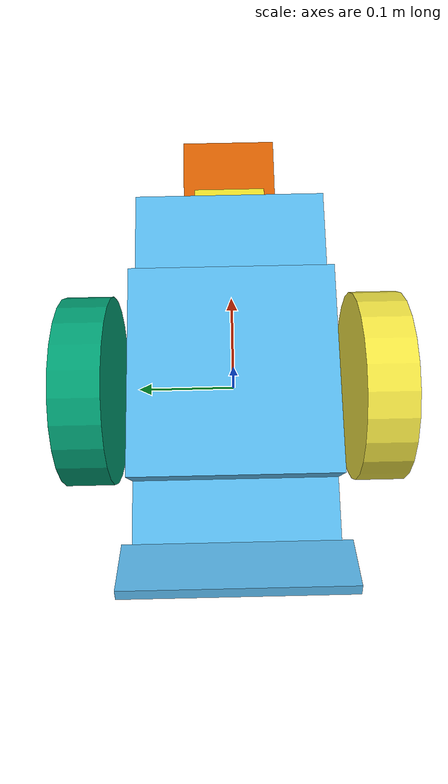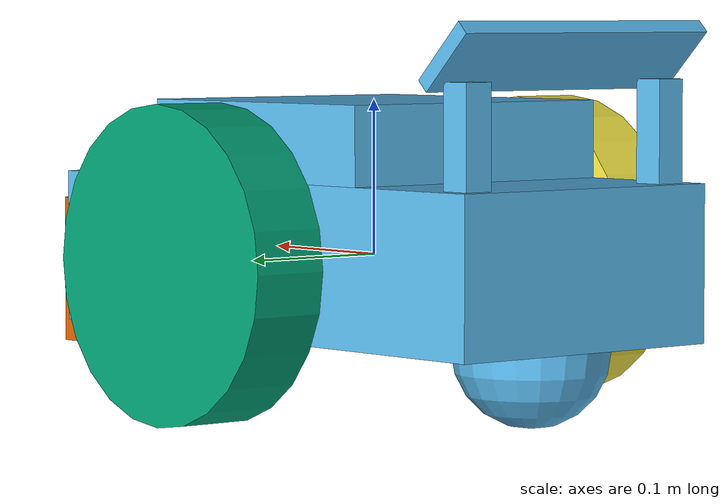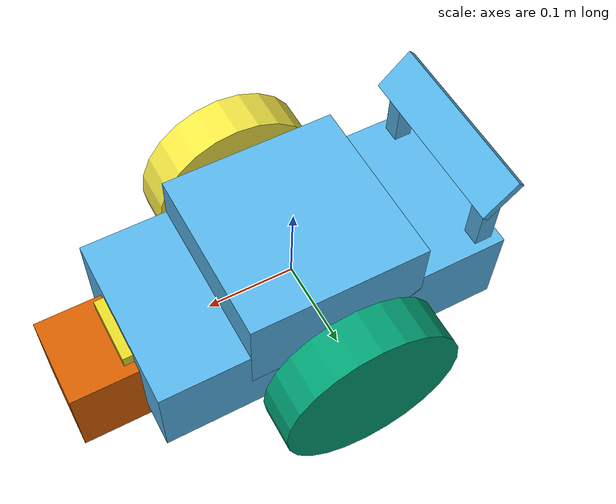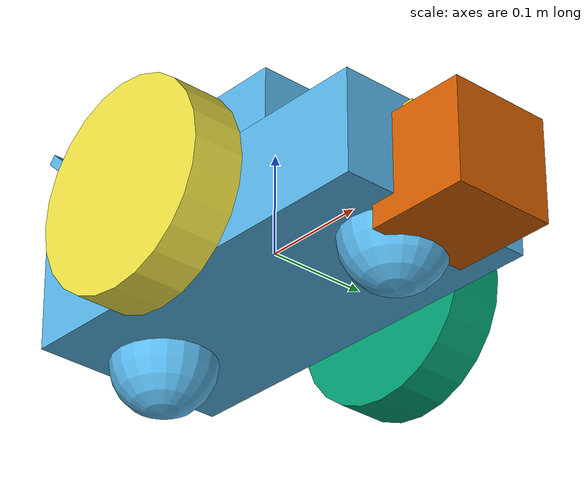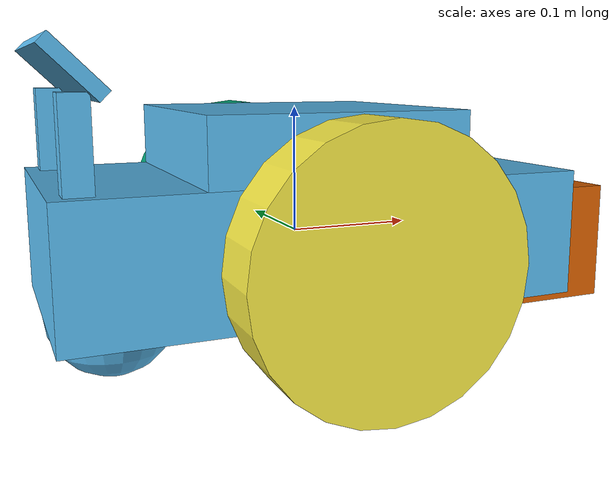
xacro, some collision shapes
<?xml version='1.0'?>

<robot name="udacity_bot" xmlns:xacro="http://www.ros.org/wiki/xacro">

  <xacro:include filename="$(find ozdemre_bot)/urdf/udacity_bot.gazebo" />

  <link name="robot_footprint"></link>

  <joint name="robot_footprint_joint" type="fixed">
    <origin xyz="0 0 0" rpy="0 0 0" />
    <parent link="robot_footprint"/>
    <child link="chassis" />
  </joint>

  <link name='chassis'>
    <pose>0 0 0.1 0 0 0</pose>

    <inertial>
      <mass value="15.0"/>
      <origin xyz="0.0 0 0" rpy=" 0 0 0"/>
      <inertia
          ixx="0.1" ixy="0" ixz="0"
          iyy="0.1" iyz="0"
          izz="0.1"
      />
    </inertial>

    <collision name='collision'>
      <origin xyz="0 0 0" rpy=" 0 0 0"/>
      <geometry>
        <box size=".4 .2 .1"/>
      </geometry>
    </collision>

    <visual name='chassis_visual'>
      <origin xyz="0 0 0" rpy=" 0 0 0"/>
      <geometry>
        <box size=".4 .2 .1"/>
      </geometry>
    </visual>

    <collision name='back_caster_collision'>
      <origin xyz="-0.15 0 -0.05" rpy=" 0 0 0"/>
      <geometry>
        <sphere radius="0.0499"/>
      </geometry>
      <surface>
        <friction>
          <ode>
            <mu>0</mu>
            <mu2>0</mu2>
            <slip1>1.0</slip1>
            <slip2>1.0</slip2>
          </ode>
        </friction>
      </surface>
    </collision>

    <visual name='back_caster_visual'>
      <origin xyz="-0.15 0 -0.05" rpy=" 0 0 0"/>
      <geometry>
        <sphere radius="0.05"/>
      </geometry>
    </visual>

    <collision name='front_caster_collision'>
      <origin xyz="0.15 0 -0.05" rpy=" 0 0 0"/>
      <geometry>
        <sphere radius="0.0499"/>
      </geometry>
      <surface>
        <friction>
          <ode>
            <mu>0</mu>
            <mu2>0</mu2>
            <slip1>1.0</slip1>
            <slip2>1.0</slip2>
          </ode>
        </friction>
      </surface>
    </collision>

    <visual name='front_caster_visual'>
      <origin xyz="0.15 0 -0.05" rpy=" 0 0 0"/>
      <geometry>
        <sphere radius="0.05"/>
      </geometry>
    </visual>

    <collision name='lidar_bracket_collision'>
      <origin xyz="0.225 0 -0.0225" rpy=" 0 0 0"/>
      <geometry>
        <box size="0.05 0.05 -0.01"/>
      </geometry>
    </collision>

    <visual name='lidar_bracket_visual'>
      <origin xyz="0.225 0 -0.0225" rpy=" 0 0 0"/>
      <geometry>
        <box size="0.05 0.05 0.01"/>
      </geometry>
    </visual>

    <collision name='passenger_collision'>
      <origin xyz="0 0 0.05" rpy=" 0 0 0"/>
      <geometry>
        <box size=".2 .2 .1"/>
      </geometry>
    </collision>

    <visual name='passenger_visual'>
      <origin xyz="0 0 0.05" rpy=" 0 0 0"/>
      <geometry>
        <box size=".2 .2 .1"/>
      </geometry>
    </visual>

    <collision name='column1_collision'>
      <origin xyz="-0.18 0.08 0.05" rpy=" 0 0 0"/>
      <geometry>
        <box size="0.02 0.02 0.13"/>
      </geometry>
    </collision>

    <visual name='column1_visual'>
      <origin xyz="-0.18 0.08 0.05" rpy=" 0 0 0"/>
      <geometry>
        <box size="0.02 0.02 0.13"/>
      </geometry>
    </visual>

    <collision name='column2_collision'>
      <origin xyz="-0.18 -0.08 0.05" rpy=" 0 0 0"/>
      <geometry>
        <box size="0.02 0.02 0.13"/>
      </geometry>
    </collision>

    <visual name='column2_visual'>
      <origin xyz="-0.18 -0.08 0.05" rpy=" 0 0 0"/>
      <geometry>
        <box size="0.02 0.02 0.13"/>
      </geometry>
    </visual>

    <collision name='spoiler_collision'>
      <origin xyz="-0.18 0 0.13" rpy=" 0 0.78 0"/>
      <geometry>
        <box size="0.05 .2 .01"/>
      </geometry>
    </collision>

    <visual name='spoiler_visual'>
      <origin xyz="-0.18 0 0.13" rpy=" 0 0.78 0"/>
      <geometry>
        <box size="0.05 .2 .01"/>
      </geometry>
    </visual>

  </link>

  <link name="left_wheel">
    <inertial>
      <mass value="5.0"/>
      <origin xyz="0 0 0" rpy=" 0 1.5707 1.5707"/>
      <inertia
          ixx="0.1" ixy="0" ixz="0"
          iyy="0.1" iyz="0"
          izz="0.1"
      />
    </inertial>

    <collision name='left_wheel_collision'>
      <origin xyz="0 0 0" rpy=" 0 1.5707 1.5707"/>
      <geometry>
        <cylinder radius="0.1" length="0.05" />
      </geometry>
    </collision>

    <visual name='left_wheel_visual'>
      <origin xyz="0 0 0" rpy=" 0 1.5707 1.5707"/>
      <geometry>
        <cylinder radius="0.1" length="0.05" />
      </geometry>
    </visual>
  </link>

  <link name="right_wheel">
    <inertial>
      <mass value="5.0"/>
      <origin xyz="0 0 0" rpy=" 0 1.5707 1.5707"/>
      <inertia
          ixx="0.1" ixy="0" ixz="0"
          iyy="0.1" iyz="0"
          izz="0.1"
      />
    </inertial>

    <collision name='right_wheel_collision'>
      <origin xyz="0 0 0" rpy=" 0 1.5707 1.5707"/>
      <geometry>
        <cylinder radius="0.1" length="0.05" />
      </geometry>
    </collision>

    <visual name='right_wheel_visual'>
      <origin xyz="0 0 0" rpy=" 0 1.5707 1.5707"/>
      <geometry>
        <cylinder radius="0.1" length="0.05" />
      </geometry>
    </visual>
  </link>

  <joint type="continuous" name="left_wheel_hinge">
    <origin xyz="0 0.15 0" rpy="0 0 0"/>
    <child link="left_wheel"/>
    <parent link="chassis"/>
    <axis xyz="0 1 0" rpy="0 0 0"/>
    <limit effort="10000" velocity="1000"/>
    <joint_properties damping="1.0" friction="1.0"/>
  </joint>

  <joint type="continuous" name="right_wheel_hinge">
    <origin xyz="0 -0.15 0" rpy="0 0 0"/>
    <child link="right_wheel"/>
    <parent link="chassis"/>
    <axis xyz="0 1 0" rpy="0 0 0"/>
    <limit effort="10000" velocity="1000"/>
    <joint_properties damping="1.0" friction="1.0"/>
  </joint>

  <link name="camera">
    <inertial>
      <mass value=".1"/>
      <origin xyz="0 0 0" rpy="0 0 0"/>
      <inertia
          ixx="1e-6" ixy="0" ixz="0"
          iyy="1e-6" iyz="0"
          izz="1e-6"
      />
    </inertial>

    <collision name='camera_collision'>
      <origin xyz="0 0 0" rpy="0 0 0"/>
      <geometry>
        <box size="0.0225 0.075 0.0225"/>
      </geometry>
    </collision>

    <visual name='camera_visual'>
      <origin xyz="0 0 0" rpy="0 0 0"/>
      <geometry>
        <box size="0.0225 0.075 0.0225"/>
      </geometry>
    </visual>
  </link>

  <joint type="fixed" name="camera_joint">
    <origin xyz="0.2 0 0.03" rpy="0 0 0"/>
    <child link="camera"/>
    <parent link="chassis"/>
  </joint>

  <link name="hokuyo">
    <inertial>
      <mass value=".1"/>
      <origin xyz="0 0 0" rpy="0 0 0"/>
      <inertia
          ixx="1e-6" ixy="0" ixz="0"
          iyy="1e-6" iyz="0"
          izz="1e-6"
      />
    </inertial>

    <collision name='hokuyo_collision'>
      <origin xyz="0 0 0" rpy="0 0 0"/>
      <geometry>
        <box size="0.1 0.1 0.1"/>
      </geometry>
    </collision>

    <visual name='hokuyo_visual'>
      <origin xyz="0 0 0" rpy="0 0 0"/>
      <geometry>
        <mesh filename="package://ozdemre_bot/meshes/hokuyo.dae"/>
      </geometry>
    </visual>
  </link>

  <joint type="fixed" name="hokuyo_joint">
    <origin xyz="0.225 0 -0.0225" rpy="0 0 0"/>
    <child link="hokuyo"/>
    <parent link="chassis"/>
  </joint>

</robot>
